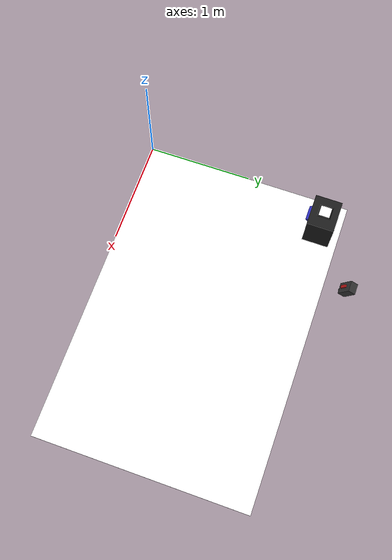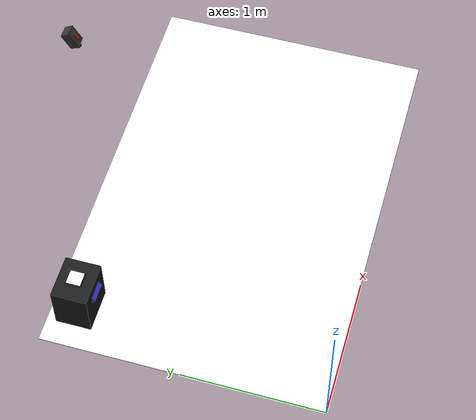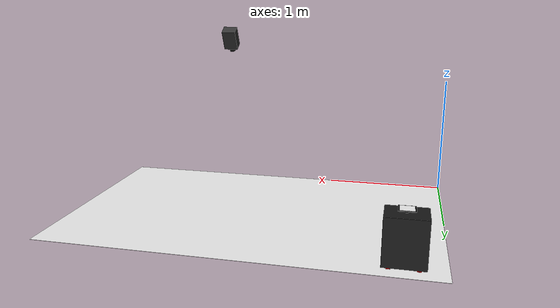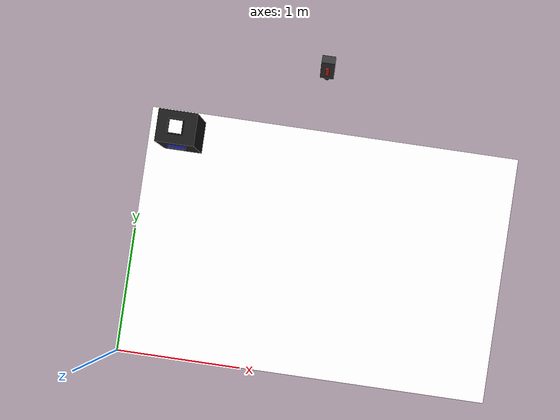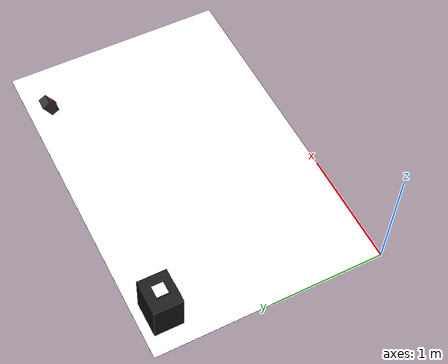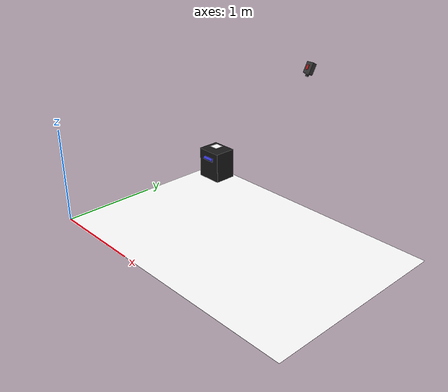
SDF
<?xml version="1.0" ?>
<sdf version="1.10">
    <world name="Eurobot_world">
        <physics name="1ms" type="ignored">
            <max_step_size>0.001</max_step_size>
            <real_time_factor>1.0</real_time_factor>
        </physics>

        <plugin
            filename="gz-sim-physics-system"
            name="gz::sim::systems::Physics">
        </plugin>
        <plugin
            filename="gz-sim-user-commands-system"
            name="gz::sim::systems::UserCommands">
        </plugin>
        <plugin
            filename="gz-sim-scene-broadcaster-system"
            name="gz::sim::systems::SceneBroadcaster">
        </plugin>

        <plugin filename="gz-sim-sensors-system"
        name="gz::sim::systems::Sensors">
  <render_engine>ogre2</render_engine>
</plugin>

<plugin filename="gz-sim-imu-system"
        name="gz::sim::systems::Imu">
</plugin>

<gui fullscreen="0">
  <plugin filename="MinimalScene" name="3D View">
    <gz-gui>
      <title>3D View</title>
      <property type="bool" key="showTitleBar">false</property>
      <property type="string" key="state">docked</property>
    </gz-gui>
    <engine>ogre2</engine>
    <scene>scene</scene>
    <ambient_light>0.4 0.4 0.4</ambient_light>
    <background_color>0.8 0.8 0.8</background_color>

    <camera_pose>1.5 -0.9 1.5 0 0.55 1.5708</camera_pose>

    <camera_clip>
      <near>0.25</near>
      <far>25000</far>
    </camera_clip>
  </plugin>

  <plugin filename="GzSceneManager" name="Scene Manager">
    <gz-gui>
      <property key="resizable" type="bool">false</property>
      <property key="width" type="double">5</property>
      <property key="height" type="double">5</property>
      <property key="state" type="string">floating</property>
      <property key="showTitleBar" type="bool">false</property>
    </gz-gui>
  </plugin>

  <plugin filename="WorldControl" name="World control">
    <gz-gui>
      <title>World control</title>
      <property type="bool" key="showTitleBar">false</property>
      <property type="bool" key="resizable">false</property>
      <property type="double" key="height">72</property>
      <property type="double" key="width">121</property>
      <property type="double" key="z">1</property>
      <property type="string" key="state">floating</property>
      <anchors target="3D View">
        <line own="left" target="left"/>
        <line own="bottom" target="bottom"/>
      </anchors>
    </gz-gui>
    <play_pause>true</play_pause>
    <step>true</step>
    <start_paused>false</start_paused>
    <service>/world/Eurobot_world/control</service>
    <stats_topic>/world/Eurobot_world/stats</stats_topic>
  </plugin>

  <plugin filename="WorldStats" name="World stats">
    <gz-gui>
      <title>World stats</title>
      <property type="bool" key="showTitleBar">false</property>
      <property type="bool" key="resizable">false</property>
      <property type="double" key="height">110</property>
      <property type="double" key="width">290</property>
      <property type="double" key="z">1</property>
      <property type="string" key="state">floating</property>
      <anchors target="3D View">
        <line own="right" target="right"/>
        <line own="bottom" target="bottom"/>
      </anchors>
    </gz-gui>
    <sim_time>true</sim_time>
    <real_time>true</real_time>
    <real_time_factor>true</real_time_factor>
    <iterations>true</iterations>
    <topic>/world/car_world/stats</topic>
  </plugin>

<plugin filename="ImageDisplay" name="Left camera">
  <gz-gui>
    <title>Left camera</title>
    <property type="string" key="state">floating</property>
    <property type="double" key="width">420</property>
    <property type="double" key="height">320</property>
  </gz-gui>
  <topic>/camera/left/image_raw</topic>
  <topic_picker>false</topic_picker>
</plugin>
<plugin filename="ImageDisplay" name="Right camera">
  <gz-gui>
    <title>Right camera</title>
    <property type="string" key="state">floating</property>
    <property type="double" key="width">420</property>
    <property type="double" key="height">320</property>
  </gz-gui>
  <topic>/camera/right/image_raw</topic>
  <topic_picker>false</topic_picker>
</plugin>

<plugin filename="ImageDisplay" name="Overhead camera">
  <gz-gui>
    <title>Overhead camera</title>
    <property type="string" key="state">floating</property>
    <property type="double" key="width">420</property>
    <property type="double" key="height">320</property>
  </gz-gui>
  <topic>/overhead_cam/image</topic>
  <topic_picker>false</topic_picker>
</plugin>

</gui>

        <light type="directional" name="sun">
            <cast_shadows>true</cast_shadows>
            <pose>0 0 10 0 0 0</pose>
            <diffuse>0.8 0.8 0.8 1</diffuse>
            <specular>0.2 0.2 0.2 1</specular>
            <attenuation>
                <range>1000</range>
                <constant>0.9</constant>
                <linear>0.01</linear>
                <quadratic>0.001</quadratic>
            </attenuation>
            <direction>-0.5 0.1 -0.9</direction>
        </light>
        <model name="playground_plane">
  <static>true</static>
  <link name="link">

    <collision name="collision">
      <geometry>
        <plane>
          <normal>0 0 1</normal>
          <size>3 2</size>
        </plane>
      </geometry>
    </collision>

    <visual name="visual">
  <geometry>
    <plane>
      <normal>0 0 1</normal>
      <size>3 2</size>
    </plane>
  </geometry>

  <material>
    <ambient>1 1 1 1</ambient>
    <diffuse>1 1 1 1</diffuse>
    <specular>0.1 0.1 0.1 1</specular>
    <pbr>
      <metal>
        <albedo_map>file:///home/sondre/sondre_ws/install/sondre_bot_sim/share/sondre_bot_sim/materials/textures/playground_mat.png</albedo_map>
        <roughness>1.0</roughness>
        <metalness>0.0</metalness>
      </metal>
    </pbr>
  </material>
</visual>

    <pose>1.5 1 0 0 0 0</pose>
  </link>
</model>

        <model name="sondre_bot" canonical_link="chassis" >
          <!-- Initial position of BOT-->
          <pose>0.3 1.9 0 0 0 -1.5707963267949</pose>

<plugin filename="gz-sim-diff-drive-system"
        name="gz::sim::systems::DiffDrive">
  <left_joint>left_wheel_joint</left_joint>
  <right_joint>right_wheel_joint</right_joint>
  <wheel_separation>0.20</wheel_separation>
  <wheel_radius>0.03</wheel_radius>
  <topic>/cmd_vel</topic>

<min_linear_acceleration>-2</min_linear_acceleration>
<max_linear_acceleration>2</max_linear_acceleration>

<min_linear_velocity>-3</min_linear_velocity>
<max_linear_velocity>3</max_linear_velocity>

<min_angular_acceleration>-3.0</min_angular_acceleration>
<max_angular_acceleration>3.0</max_angular_acceleration>

<min_angular_velocity>-2.0</min_angular_velocity>
<max_angular_velocity>2.0</max_angular_velocity>

<odom_publish_frequency>50</odom_publish_frequency>
<odom_topic>/odom</odom_topic>
<frame_id>odom</frame_id>
<child_frame_id>base_link</child_frame_id>

</plugin>

<!-- CHASSIS LINK -->

<link name="chassis">
    <visual name="chassis_visual">
        <pose> 0.1 0 0.20 0 0 0 </pose>

        <geometry>
            <box>
                <size>0.25 0.3 0.35</size>
            </box>
        </geometry>

        <material>
  <ambient>0.1 0.1 0.1 1</ambient>
  <diffuse>0.1 0.1 0.1 1</diffuse>
  <specular>0.2 0.2 0.2 1</specular>
</material>

    </visual>
    <collision name="chassis_collision">
        <pose> 0.1 0 0.18 0 0 0 </pose>
        <geometry>
            <box>
                <size>0.25 0.3 0.35</size>
            </box>
        </geometry>
    </collision>
<inertial>
  <pose>0.1 0 0.18 0 0 0</pose>
  <mass>1</mass>
  <inertia>
    <ixx>0.0177083333</ixx>
    <ixy>0</ixy>
    <ixz>0</ixz>
    <iyy>0.0154166667</iyy>
    <iyz>0</iyz>
    <izz>0.0127083333</izz>
  </inertia>
</inertial>

<sensor name="opencr_imu" type="imu">
  <pose>0 0 0 0 0 0</pose>
  <always_on>1</always_on>
  <update_rate>200</update_rate>
  <visualize>false</visualize>
  <topic>/imu</topic>
</sensor>

 <!-- Robot top ArUco tag support -->
<visual name="bot_tag_post_visual">
  <pose>0.10 0 0.3875 0 0 0</pose>
  <geometry>
    <box>
      <size>0.02 0.02 0.025</size>
    </box>
  </geometry>
  <material>
    <ambient>0.15 0.15 0.15 1</ambient>
    <diffuse>0.15 0.15 0.15 1</diffuse>
    <specular>0.05 0.05 0.05 1</specular>
  </material>
</visual>

<!-- Black backing plate -->
<visual name="bot_tag_backing_visual">
  <pose>0.10 0 0.4015 0 0 0</pose>
  <geometry>
    <box>
      <size>0.12 0.12 0.003</size>
    </box>
  </geometry>
  <material>
    <ambient>0 0 0 1</ambient>
    <diffuse>0 0 0 1</diffuse>
    <specular>0 0 0 1</specular>
  </material>
</visual>

<!-- Actual tag plate -->
<visual name="bot_tag_71_visual">
  <pose>0.10 0 0.4045 0 0 0</pose>
  <geometry>
    <box>
      <size>0.10 0.10 0.002</size>
    </box>
  </geometry>
  <cast_shadows>false</cast_shadows>
  <material>
    <ambient>1 1 1 1</ambient>
    <diffuse>1 1 1 1</diffuse>
    <specular>0 0 0 1</specular>
    <pbr>
      <metal>
        <albedo_map>file:///home/sondre/sondre_ws/src/sondre_bot_sim/materials/textures/71_Bot_ID_YELLOW.png</albedo_map>
        <roughness>1.0</roughness>
        <metalness>0.0</metalness>
      </metal>
    </pbr>
  </material>
</visual>

</link>

<!-- LEFT WHEEL LINK -->

<link name="left_wheel">
    <pose> 0.02 0.1 0.03 -1.570796 0 0</pose>
    <visual name="left_wheel_visual">
        <geometry>
            <cylinder>
                <radius>0.03</radius>
                <length>0.03</length>
            </cylinder>
        </geometry>
                <material>
            <ambient>1.0 0.0 0.0 1</ambient>
            <diffuse>1.0 0.0 0.0 1</diffuse>
            <specular>1.0 0.0 0.0 1</specular>
        </material>
    </visual>
    <collision name="left_wheel_collision">
        <geometry>
            <cylinder>
                <radius>0.03</radius>
                <length>0.03</length>
            </cylinder>
        </geometry>
    </collision>
    <inertial>
  <pose>0 0 0 0 0 0</pose>
  <mass>0.05</mass>
  <inertia>
    <ixx>0.000015</ixx>
    <ixy>0</ixy>
    <ixz>0</ixz>
    <iyy>0.000015</iyy>
    <iyz>0</iyz>
    <izz>0.0000225</izz>
  </inertia>
</inertial>
</link>

<joint name="left_wheel_joint" type="revolute">
    <parent> chassis </parent>
    <child> left_wheel </child>
    <axis>
        <xyz>0 0 1</xyz>
        <dynamics>
      <damping>0.2</damping>
    </dynamics>
    </axis>
</joint>

<!-- RIGHT WHEEL LINK -->

<link name="right_wheel">
    <pose> 0.02 -0.1 0.03 1.5707963 0 0 </pose>
    <visual name="right_wheel_visual">
        <geometry>
            <cylinder>
                <radius>0.03</radius>
                <length>0.03</length>
            </cylinder>
        </geometry>
                <material>
            <ambient>1.0 0.0 0.0 1</ambient>
            <diffuse>1.0 0.0 0.0 1</diffuse>
            <specular>1.0 0.0 0.0 1</specular>
        </material>
    </visual>
    <collision name="right_wheel_collision">
        <geometry>
            <cylinder>
                <radius>0.03</radius>
                <length>0.03</length>
            </cylinder>
        </geometry>
    </collision>
    <inertial>
  <pose>0 0 0 0 0 0</pose>
  <mass>0.05</mass>
  <inertia>
    <ixx>0.000015</ixx>
    <ixy>0</ixy>
    <ixz>0</ixz>
    <iyy>0.000015</iyy>
    <iyz>0</iyz>
    <izz>0.0000225</izz>
  </inertia>
</inertial>
</link>

 <joint name="right_wheel_joint" type="revolute">
    <parent> chassis </parent>
    <child> right_wheel </child>
    <axis>
        <xyz>0 0 -1</xyz>
        <dynamics>
      <damping>0.2</damping>
    </dynamics>
    </axis>
</joint>

<!-- CASTER WHEEL LINK -->

<link name="caster_wheel">
    <pose> 0.18 0 0.03 0 0 0 </pose>
    <visual name="caster_wheel_visual">
        <geometry>
            <sphere>
                <radius>0.03</radius>
            </sphere>
        </geometry>
        <material>
            <ambient>0.0 1 0.0 1</ambient>
            <diffuse>0.0 1 0.0 1</diffuse>
            <specular>0.0 1 0.0 1</specular>
        </material>
    </visual>
    <collision name="caster_wheel_collision">
  <geometry>
    <sphere>
      <radius>0.03</radius>
    </sphere>
  </geometry>
  <surface>
    <friction>
      <ode>
        <mu>0.001</mu>
        <mu2>0.001</mu2>
      </ode>
    </friction>
  </surface>
</collision>
    <inertial>
  <pose>0 0 0 0 0 0</pose>
  <mass>0.05</mass>
  <inertia>
    <ixx>0.000018</ixx>
    <ixy>0</ixy>
    <ixz>0</ixz>
    <iyy>0.000018</iyy>
    <iyz>0</iyz>
    <izz>0.000018</izz>
  </inertia>
</inertial>
</link>

<joint name="caster_wheel_joint" type="fixed">
    <parent> chassis </parent>
    <child> caster_wheel </child>
</joint>

<!-- add under your model -->

<link name="camera_link">
  <pose>0.22 0 0.28 0 0.78539816 0</pose>

  <visual name="camera_visual">
    <geometry>
      <box>
        <size>0.04 0.14 0.04</size>
      </box>
    </geometry>
    <material>
      <ambient>0.2 0.2 0.8 1</ambient>
      <diffuse>0.2 0.2 0.8 1</diffuse>
    </material>
  </visual>

  <visual name="left_lens">
  <pose>0.016 0.06 0 0 1.57 0</pose>

  <geometry>
    <cylinder>
      <radius>0.01</radius>
      <length>0.01</length>
    </cylinder>
  </geometry>

  <material>
    <ambient>0 0 0 1</ambient>
    <diffuse>0 0 0 1</diffuse>
  </material>
</visual>

<visual name="right_lens">
  <pose>0.016 -0.06 0 0 1.57 0</pose>

  <geometry>
    <cylinder>
      <radius>0.01</radius>
      <length>0.01</length>
    </cylinder>
  </geometry>

</visual>

  <inertial>
    <mass>0.02</mass>
    <inertia>
      <ixx>1e-5</ixx><ixy>0</ixy><ixz>0</ixz>
      <iyy>1e-5</iyy><iyz>0</iyz>
      <izz>1e-5</izz>
    </inertia>
  </inertial>

  <!-- LEFT CAMERA -->

<sensor name="left_camera" type="camera">
  <pose>0 0.06 0 0 0 0</pose>

  <always_on>true</always_on>
  <update_rate>30</update_rate>
  <visualize>true</visualize>

  <topic>/camera/left/image_raw</topic>

  <camera>
    <horizontal_fov>1.605</horizontal_fov> <!-- 92 deg -->
    <image>
      <width>640</width>
      <height>480</height>
      <format>R8G8B8</format>
    </image>

    <clip>
      <near>0.05</near>
      <far>20</far>
    </clip>
  </camera>
</sensor>

<!-- RIGHT CAMERA -->

<sensor name="right_camera" type="camera">
  <pose>0 -0.06 0 0 0 0</pose>

  <always_on>true</always_on>
  <update_rate>30</update_rate>
  <visualize>true</visualize>

  <topic>/camera/right/image_raw</topic>

  <camera>
    <horizontal_fov>1.605</horizontal_fov>

    <image>
      <width>640</width>
      <height>480</height>
      <format>R8G8B8</format>
    </image>

    <clip>
      <near>0.05</near>
      <far>20</far>
    </clip>
  </camera>
</sensor>

</link>

<joint name="camera_joint" type="fixed">
  <parent>chassis</parent>
  <child>camera_link</child>
</joint>

<!-- ROS optical frame -->
<link name="camera_optical_frame"/>

<joint name="camera_optical_joint" type="fixed">
  <parent>camera_link</parent>
  <child>camera_optical_frame</child>
  <!-- common body->optical rotation -->
  <pose>0 0 0 -1.57079632679 0.78539816 -1.57079632679</pose>
</joint>

</model>

<model name="overhead_camera">
  <static>true</static>
  <pose>1.4 2.1 1.5 0 1.047198 -1.5708</pose>

  <link name="camera_link">

    <!-- Camera body -->
    <visual name="body_visual">
      <pose>0 0 0 0 0 0</pose>
      <geometry>
        <box>
          <size>0.12 0.08 0.06</size>
        </box>
      </geometry>
      <material>
        <ambient>0.15 0.15 0.15 1</ambient>
        <diffuse>0.2 0.2 0.2 1</diffuse>
      </material>
    </visual>

    <!-- Lens / front direction marker -->
    <visual name="lens_visual">
      <pose>0.07 0 0 0 1.5708 0</pose>
      <geometry>
        <cylinder>
          <radius>0.018</radius>
          <length>0.03</length>
        </cylinder>
      </geometry>
      <material>
        <ambient>0.05 0.05 0.05 1</ambient>
        <diffuse>0.05 0.05 0.05 1</diffuse>
      </material>
    </visual>

    <!-- Small top marker so rotation is easier to see -->
    <visual name="top_marker_visual">
      <pose>0 0 0.04 0 0 0</pose>
      <geometry>
        <box>
          <size>0.05 0.02 0.01</size>
        </box>
      </geometry>
      <material>
        <ambient>0.8 0.1 0.1 1</ambient>
        <diffuse>0.8 0.1 0.1 1</diffuse>
      </material>
    </visual>

    <sensor name="overhead_rgb" type="camera">
      <pose>0.085 0 0 0 0 0</pose>
      <always_on>1</always_on>
      <update_rate>30</update_rate>
      <visualize>true</visualize>
      <topic>/overhead_cam/image</topic>

      <camera>
        <horizontal_fov>1.6</horizontal_fov>
        <image>
          <width>1920</width>
          <height>1080</height>
          <format>R8G8B8</format>
        </image>
        <clip>
          <near>0.05</near>
          <far>20.0</far>
        </clip>
      </camera>
    </sensor>

  </link>
</model>

    </world>
</sdf>
